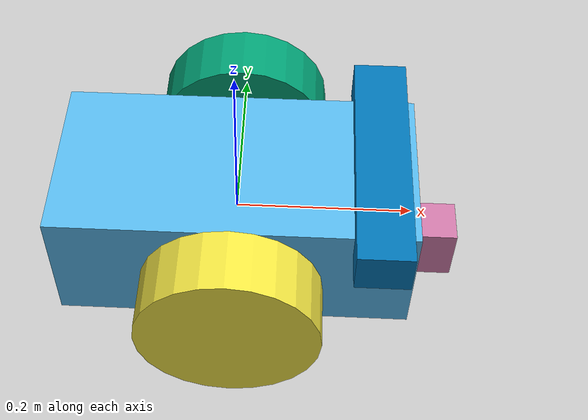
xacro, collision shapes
<?xml version='1.0'?>
<robot name="dummy" xmlns:xacro="http://www.ros.org/wiki/xacro">
  <!-- File containing the plugins -->
  <xacro:include filename="$(find robot)/urdf/dummy.gazebo" />

  <!--
  ******************************************************************************
  All robot links
  ******************************************************************************
  -->

  <!-- Link 0: Robot footprint -->
  <link name="robot_footprint">
    <!-- Empty -->
  </link>

  <!-- Link 1: Robot chassis -->
  <link name='chassis'>
    <pose>0 0 0.5 0 0 0</pose>
    <inertial>
      <mass value="15.0"/>
      <origin xyz="0 0 0" rpy=" 0 0 0"/>
      <inertia
        ixx="0.1" ixy="0" ixz="0"
        iyy="0.1" iyz="0"
        izz="0.1"
      />
    </inertial>

    <visual name='chassis_visual'>
      <origin xyz="0 0 0" rpy=" 0 0 0"/>
      <geometry>
        <mesh
          scale="0.9 0.6 0.6"
          filename="package://database/objects/models/robot/chassis.dae"
        />
      </geometry>
    </visual>
    <collision name='chassis_collision'>
      <origin xyz="0 0 0" rpy=" 0 0 0"/>
      <geometry>
        <box size="0.4 0.2 0.15"/>
      </geometry>
    </collision>

    <visual name='back_caster_visual'>
      <origin xyz="-0.12 0 -0.05" rpy=" 0 0 0"/>
      <geometry>
        <sphere radius="0.05"/>
      </geometry>
    </visual>
    <collision name='back_caster_collision'>
      <origin xyz="-0.12 0 -0.05" rpy=" 0 0 0"/>
      <geometry>
        <sphere radius="0.0499"/>
      </geometry>
    </collision>

    <visual name='front_caster_visual'>
      <origin xyz="0.14 0 -0.05" rpy=" 0 0 0"/>
      <geometry>
        <sphere radius="0.05"/>
      </geometry>
    </visual>
    <collision name='front_caster_collision'>
      <origin xyz="0.14 0 -0.05" rpy=" 0 0 0"/>
      <geometry>
        <sphere radius="0.0499"/>
      </geometry>
    </collision>
  </link>

  <!-- Link 2: Left wheel -->
  <link name='left_wheel'>
    <inertial>
      <mass value="5.0"/>
      <origin xyz="0 0 0" rpy="0 1.5707 1.5707"/>
      <inertia
        ixx="0.1" ixy="0" ixz="0"
        iyy="0.1" iyz="0"
        izz="0.1"
      />
    </inertial>
    <visual name='left_wheel_visual'>
      <origin xyz="0 0 0" rpy="0 0 0"/>
      <geometry>
        <mesh
          scale="0.9 0.9 0.9"
          filename="package://database/objects/models/robot/wheel.dae"
        />
      </geometry>
    </visual>
    <collision name='left_wheel_collision'>
      <origin xyz="0 0 0" rpy="0 1.5707 1.5707"/>
      <geometry>
        <cylinder length="0.07" radius="0.1"/>
      </geometry>
    </collision>
  </link>

  <!-- Link 3: Right wheel -->
  <link name='right_wheel'>
    <inertial>
      <mass value="5.0"/>
      <origin xyz="0 0 0" rpy="0 1.5707 1.5707"/>
      <inertia
        ixx="0.1" ixy="0" ixz="0"
        iyy="0.1" iyz="0"
        izz="0.1"
      />
    </inertial>
    <visual name='right_wheel_visual'>
      <origin xyz="0 0 0" rpy="0 0 0"/>
      <geometry>
        <mesh
          scale="0.9 0.9 0.9"
          filename="package://database/objects/models/robot/wheel.dae"
        />
      </geometry>
    </visual>
    <collision name='right_wheel_collision'>
      <origin xyz="0 0 0" rpy="0 1.5707 1.5707"/>
      <geometry>
        <cylinder length="0.07" radius="0.1"/>
      </geometry>
    </collision>
  </link>

  <!-- Link 4: Camera RGB -->
  <link name = "camera">
    <inertial>
      <mass value="0.1"/>
      <origin xyz="0 0 0" rpy="0 0 0"/>
      <inertia
        ixx="1e-6" ixy="0" ixz="0"
        iyy="1e-6" iyz="0"
        izz="1e-6"
      />
      <box_inertia m="0.1" x="0.05" y="0.05" z="0.05"/>
    </inertial>
    <visual name='camera_visual'>
      <origin xyz="0 0 0" rpy="0 0 0"/>
      <geometry>
       <mesh filename="package://database/objects/models/camera/kinect.dae"/>
      </geometry>
    </visual>
    <collision name='camera_collision'>
      <origin xyz="0 0 0" rpy="0 0 0"/>
      <geometry>
        <box size = "0.06 0.28 0.05"/>
      </geometry>
    </collision>
  </link>

  <!-- Link 4: Camera RGBD -->
  <link name="camera_optical">
    <!-- Empty -->
  </link>

  <!-- Link 5: Laser scanner -->
  <link name = "hokuyo">
    <origin xyz="0 0 5" rpy="0 0 0"/>
    <inertial>
      <mass value = "1e-5"/>
      <origin xyz="0 0 0" rpy="0 0 0"/>
      <inertia
          ixx="1e-6" ixy="0" ixz="0"
          iyy="1e-6" iyz="0"
          izz="1e-6"
      />
    </inertial>
    <visual name='hokuyo_visual'>
      <origin xyz="0 0 0" rpy="0 0 0"/>
      <geometry>
       <mesh filename="package://database/objects/models/lidar/hokuyo.dae"/>
     </geometry>
    </visual>
    <collision name='hokuyo_collision'>
      <origin xyz="0 0 0" rpy="0 0 0"/>
      <geometry>
        <box size="0.05 0.05 0.07"/>
      </geometry>
    </collision>
  </link>

  <!--
  ******************************************************************************
  All robot joints
  ******************************************************************************
  -->

  <!-- Footprint to chassis -->
  <joint name="robot_footprint_joint" type="fixed">
    <origin xyz="0 0 0" rpy="0 0 0" />
    <parent link="robot_footprint"/>
    <child link="chassis" />
  </joint>

  <!-- Chassis to wheels-->
  <joint type="continuous" name="left_wheel_hinge">
    <origin xyz="0 0.15 0" rpy="0 0 0"/>
    <parent link="chassis"/>
    <child link="left_wheel"/>
    <axis xyz="0 1 0" rpy="0 0 0"/>
    <limit effort="10000" velocity="1000"/>
    <dynamics damping="1.0" friction="1.0"/>
  </joint>
  <joint type="continuous" name="right_wheel_hinge">
    <origin xyz="0 -0.15 0" rpy="0 0 0"/>
    <parent link="chassis"/>
    <child link="right_wheel"/>
    <axis xyz="0 1 0" rpy="0 0 0"/>
    <limit effort="10000" velocity="1000"/>
    <dynamics damping="1.0" friction="1.0"/>
  </joint>

  <!-- Chassis to sensors -->
  <joint type="fixed" name="camera_joint">
    <origin xyz="0.16 0 0.07" rpy="0 0 0"/>
    <parent link="chassis"/>
    <child link="camera"/>
  </joint>
  <joint name="camera_optical_joint" type="fixed">
    <origin xyz="0 0 0" rpy="-1.5707 0 -1.5707"/>
    <parent link="camera"/>
    <child link="camera_optical"/>
  </joint>
  <joint type="fixed" name="hokuyo_joint">
    <origin xyz="0.23 0 -0.05" rpy="0 0 0"/>
    <parent link="chassis"/>
    <child link="hokuyo"/>
  </joint>
</robot>
